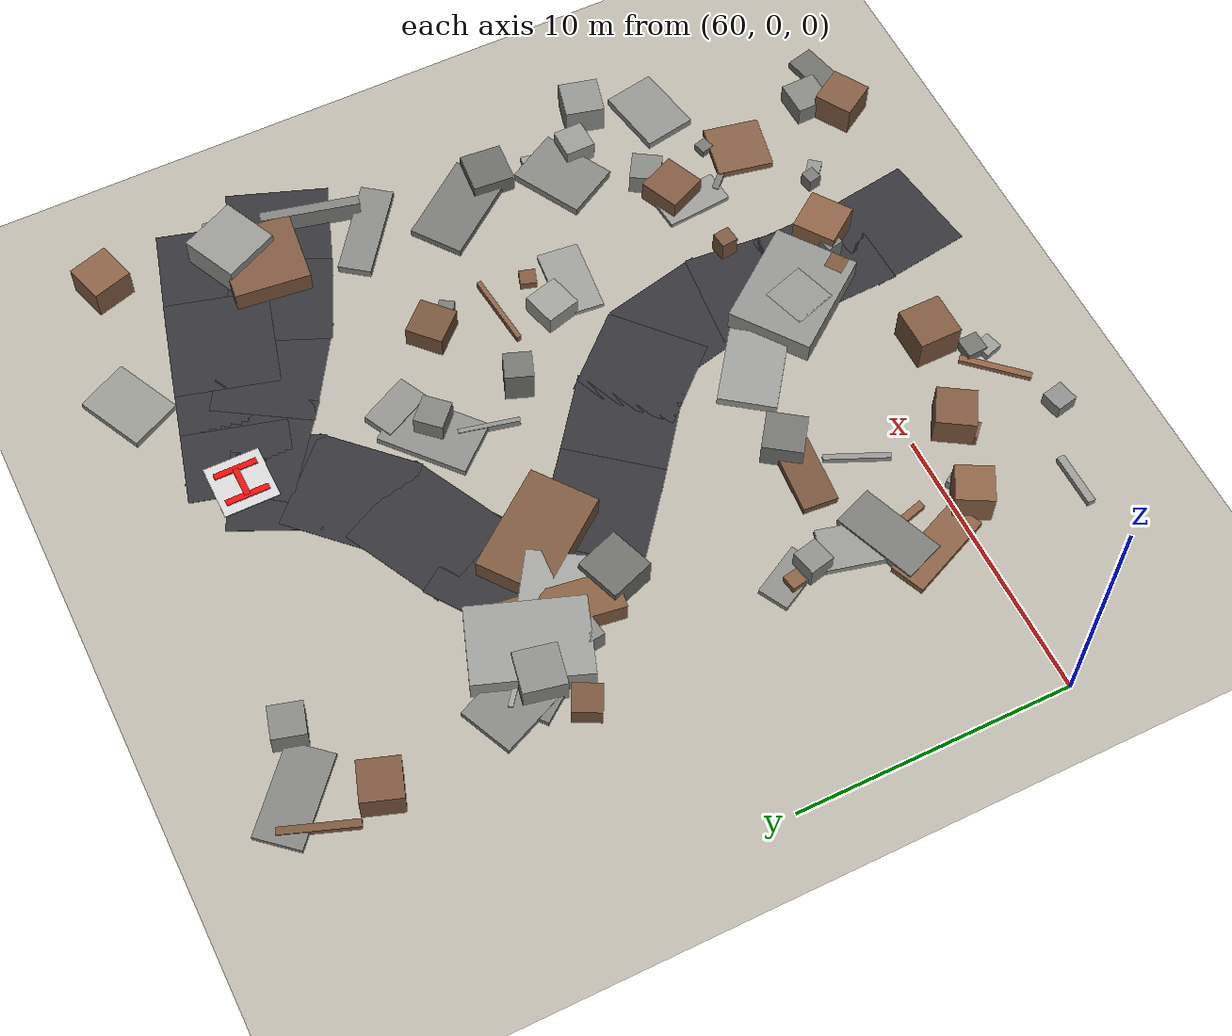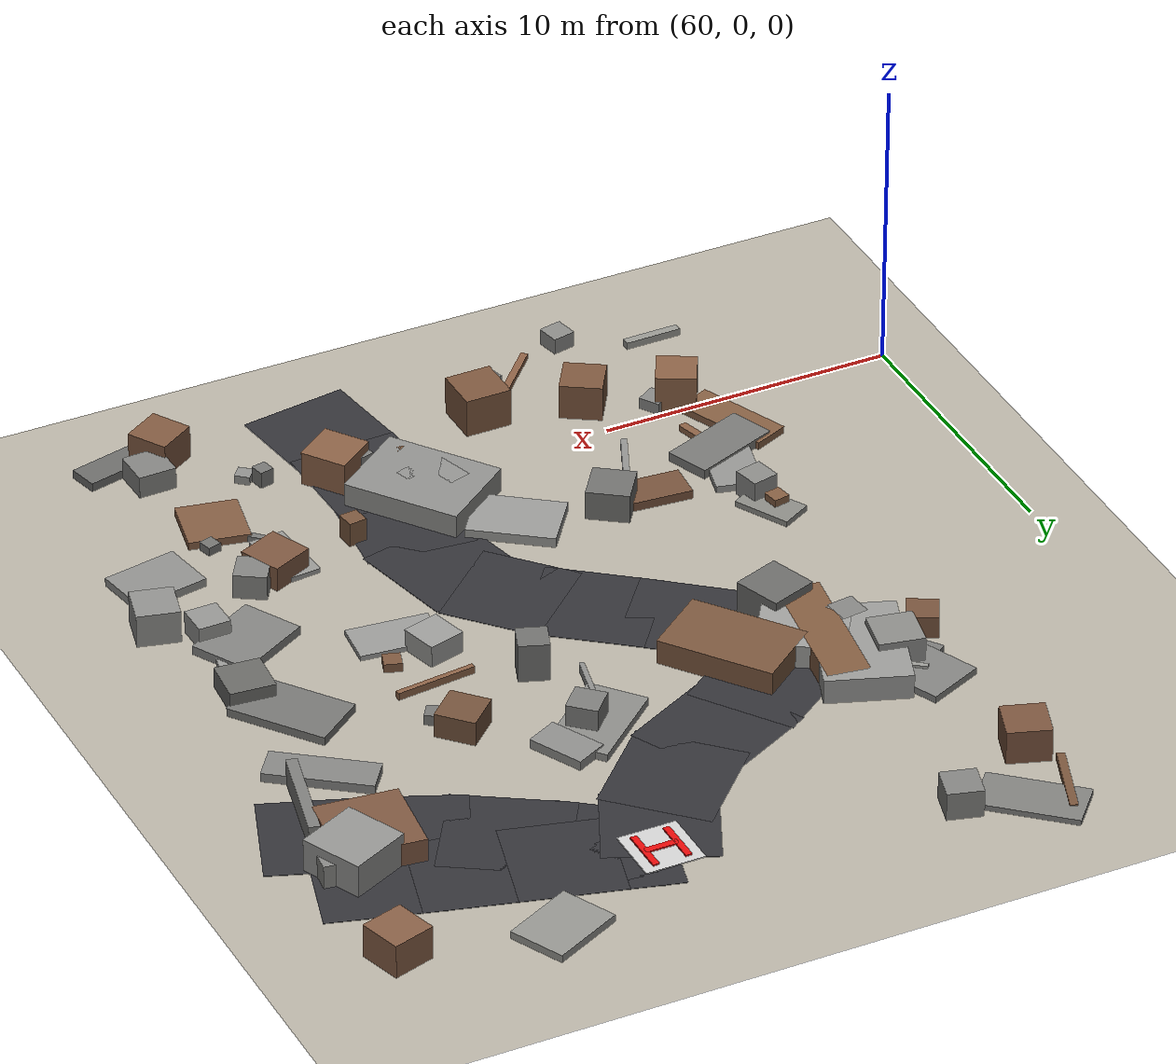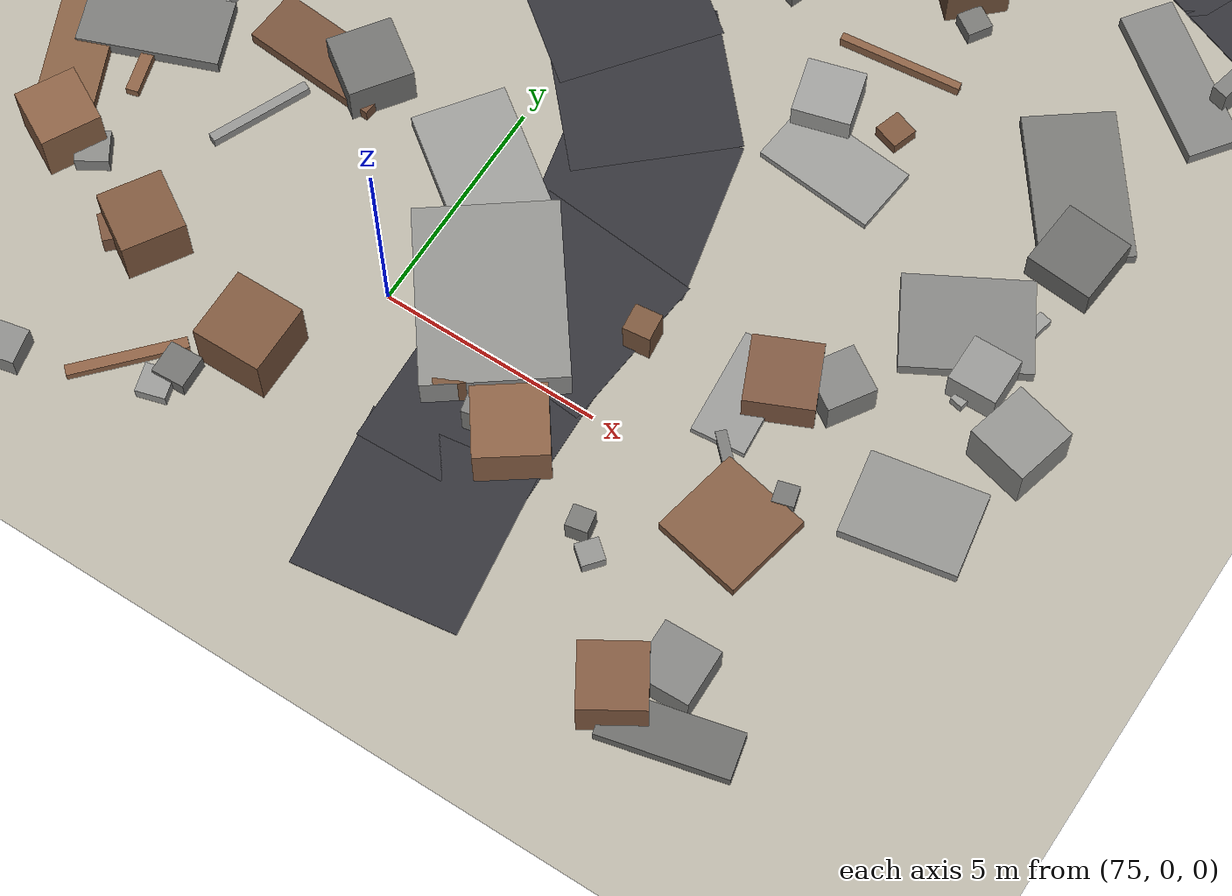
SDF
<sdf version="1.6">
 <world name="navitas_arena">
  <model name="ground_plane">
   <static>true</static>
   <link name="link">
    <collision name="collision">
     <geometry><plane><normal>0 0 1</normal><size>400 400</size></plane></geometry>
     <surface><friction><ode><mu>0.720</mu><mu2>0.720</mu2></ode></friction></surface>
    </collision>
    <visual name="visual">
     <cast_shadows>false</cast_shadows>
     <geometry><plane><normal>0 0 1</normal><size>400 400</size></plane></geometry>
     <material><ambient>0.720 0.700 0.650 1</ambient><diffuse>0.720 0.700 0.650 1</diffuse></material>
    </visual>
   </link>
  </model>
  <model name="road_zor_1_12">
   <static>true</static>
   <pose>78.257 -3.800 0.040 0 0 1.713</pose>
   <link name="link">
    <collision name="col"><geometry><box><size>3.729 3.680 0.020</size></box></geometry></collision>
    <visual name="vis">
     <geometry><box><size>3.729 3.680 0.020</size></box></geometry>
     <material><ambient>0.20 0.20 0.22 1</ambient><diffuse>0.20 0.20 0.22 1</diffuse></material>
    </visual>
   </link>
  </model>
  <model name="road_zor_1_13">
   <static>true</static>
   <pose>78.010 -1.000 0.040 0 0 1.604</pose>
   <link name="link">
    <collision name="col"><geometry><box><size>3.702 3.680 0.020</size></box></geometry></collision>
    <visual name="vis">
     <geometry><box><size>3.702 3.680 0.020</size></box></geometry>
     <material><ambient>0.20 0.20 0.22 1</ambient><diffuse>0.20 0.20 0.22 1</diffuse></material>
    </visual>
   </link>
  </model>
  <model name="road_zor_1_14">
   <static>true</static>
   <pose>78.092 1.800 0.040 0 0 1.479</pose>
   <link name="link">
    <collision name="col"><geometry><box><size>3.712 3.680 0.020</size></box></geometry></collision>
    <visual name="vis">
     <geometry><box><size>3.712 3.680 0.020</size></box></geometry>
     <material><ambient>0.20 0.20 0.22 1</ambient><diffuse>0.20 0.20 0.22 1</diffuse></material>
    </visual>
   </link>
  </model>
  <model name="road_zor_1_15">
   <static>true</static>
   <pose>77.906 4.600 0.040 0 0 1.792</pose>
   <link name="link">
    <collision name="col"><geometry><box><size>3.770 3.680 0.020</size></box></geometry></collision>
    <visual name="vis">
     <geometry><box><size>3.770 3.680 0.020</size></box></geometry>
     <material><ambient>0.20 0.20 0.22 1</ambient><diffuse>0.20 0.20 0.22 1</diffuse></material>
    </visual>
   </link>
  </model>
  <model name="road_zor_1_16">
   <static>true</static>
   <pose>76.774 6.904 0.040 0 0 2.306</pose>
   <link name="link">
    <collision name="col"><geometry><box><size>3.339 3.680 0.020</size></box></geometry></collision>
    <visual name="vis">
     <geometry><box><size>3.339 3.680 0.020</size></box></geometry>
     <material><ambient>0.20 0.20 0.22 1</ambient><diffuse>0.20 0.20 0.22 1</diffuse></material>
    </visual>
   </link>
  </model>
  <model name="road_zor_1_17">
   <static>true</static>
   <pose>74.762 8.732 0.040 0 0 2.483</pose>
   <link name="link">
    <collision name="col"><geometry><box><size>3.918 3.680 0.020</size></box></geometry></collision>
    <visual name="vis">
     <geometry><box><size>3.918 3.680 0.020</size></box></geometry>
     <material><ambient>0.20 0.20 0.22 1</ambient><diffuse>0.20 0.20 0.22 1</diffuse></material>
    </visual>
   </link>
  </model>
  <model name="road_zor_1_18">
   <static>true</static>
   <pose>72.478 10.541 0.040 0 0 2.461</pose>
   <link name="link">
    <collision name="col"><geometry><box><size>3.711 3.680 0.020</size></box></geometry></collision>
    <visual name="vis">
     <geometry><box><size>3.711 3.680 0.020</size></box></geometry>
     <material><ambient>0.20 0.20 0.22 1</ambient><diffuse>0.20 0.20 0.22 1</diffuse></material>
    </visual>
   </link>
  </model>
  <model name="road_zor_1_19">
   <static>true</static>
   <pose>71.020 12.666 0.040 0 0 1.858</pose>
   <link name="link">
    <collision name="col"><geometry><box><size>3.486 3.680 0.020</size></box></geometry></collision>
    <visual name="vis">
     <geometry><box><size>3.486 3.680 0.020</size></box></geometry>
     <material><ambient>0.20 0.20 0.22 1</ambient><diffuse>0.20 0.20 0.22 1</diffuse></material>
    </visual>
   </link>
  </model>
  <model name="road_zor_1_20">
   <static>true</static>
   <pose>71.752 14.688 0.040 0 0 0.618</pose>
   <link name="link">
    <collision name="col"><geometry><box><size>3.596 3.680 0.020</size></box></geometry></collision>
    <visual name="vis">
     <geometry><box><size>3.596 3.680 0.020</size></box></geometry>
     <material><ambient>0.20 0.20 0.22 1</ambient><diffuse>0.20 0.20 0.22 1</diffuse></material>
    </visual>
   </link>
  </model>
  <model name="road_zor_1_21">
   <static>true</static>
   <pose>74.207 16.153 0.040 0 0 0.467</pose>
   <link name="link">
    <collision name="col"><geometry><box><size>3.938 3.680 0.020</size></box></geometry></collision>
    <visual name="vis">
     <geometry><box><size>3.938 3.680 0.020</size></box></geometry>
     <material><ambient>0.20 0.20 0.22 1</ambient><diffuse>0.20 0.20 0.22 1</diffuse></material>
    </visual>
   </link>
  </model>
  <model name="road_zor_1_22">
   <static>true</static>
   <pose>76.566 17.854 0.040 0 0 0.792</pose>
   <link name="link">
    <collision name="col"><geometry><box><size>3.756 3.680 0.020</size></box></geometry></collision>
    <visual name="vis">
     <geometry><box><size>3.756 3.680 0.020</size></box></geometry>
     <material><ambient>0.20 0.20 0.22 1</ambient><diffuse>0.20 0.20 0.22 1</diffuse></material>
    </visual>
   </link>
  </model>
  <model name="road_zor_1_23">
   <static>true</static>
   <pose>78.063 19.935 0.040 0 0 1.137</pose>
   <link name="link">
    <collision name="col"><geometry><box><size>3.247 3.680 0.020</size></box></geometry></collision>
    <visual name="vis">
     <geometry><box><size>3.247 3.680 0.020</size></box></geometry>
     <material><ambient>0.20 0.20 0.22 1</ambient><diffuse>0.20 0.20 0.22 1</diffuse></material>
    </visual>
   </link>
  </model>
  <model name="road_zor_2_15">
   <static>true</static>
   <pose>87.415 15.986 0.040 0 0 2.789</pose>
   <link name="link">
    <collision name="col"><geometry><box><size>3.894 3.680 0.020</size></box></geometry></collision>
    <visual name="vis">
     <geometry><box><size>3.894 3.680 0.020</size></box></geometry>
     <material><ambient>0.20 0.20 0.22 1</ambient><diffuse>0.20 0.20 0.22 1</diffuse></material>
    </visual>
   </link>
  </model>
  <model name="road_zor_2_16">
   <static>true</static>
   <pose>84.858 17.002 0.040 0 0 2.734</pose>
   <link name="link">
    <collision name="col"><geometry><box><size>3.410 3.680 0.020</size></box></geometry></collision>
    <visual name="vis">
     <geometry><box><size>3.410 3.680 0.020</size></box></geometry>
     <material><ambient>0.20 0.20 0.22 1</ambient><diffuse>0.20 0.20 0.22 1</diffuse></material>
    </visual>
   </link>
  </model>
  <model name="road_zor_2_17">
   <static>true</static>
   <pose>82.404 18.320 0.040 0 0 2.580</pose>
   <link name="link">
    <collision name="col"><geometry><box><size>3.978 3.680 0.020</size></box></geometry></collision>
    <visual name="vis">
     <geometry><box><size>3.978 3.680 0.020</size></box></geometry>
     <material><ambient>0.20 0.20 0.22 1</ambient><diffuse>0.20 0.20 0.22 1</diffuse></material>
    </visual>
   </link>
  </model>
  <model name="road_zor_2_18">
   <static>true</static>
   <pose>79.829 20.070 0.040 0 0 2.510</pose>
   <link name="link">
    <collision name="col"><geometry><box><size>4.052 3.680 0.020</size></box></geometry></collision>
    <visual name="vis">
     <geometry><box><size>4.052 3.680 0.020</size></box></geometry>
     <material><ambient>0.20 0.20 0.22 1</ambient><diffuse>0.20 0.20 0.22 1</diffuse></material>
    </visual>
   </link>
  </model>
  <model name="road_zor_3_20">
   <static>true</static>
   <pose>86.890 18.730 0.040 0 0 2.862</pose>
   <link name="link">
    <collision name="col"><geometry><box><size>3.871 3.680 0.020</size></box></geometry></collision>
    <visual name="vis">
     <geometry><box><size>3.871 3.680 0.020</size></box></geometry>
     <material><ambient>0.20 0.20 0.22 1</ambient><diffuse>0.20 0.20 0.22 1</diffuse></material>
    </visual>
   </link>
  </model>
  <model name="road_zor_3_21">
   <static>true</static>
   <pose>84.064 19.520 0.040 0 0 2.876</pose>
   <link name="link">
    <collision name="col"><geometry><box><size>3.797 3.680 0.020</size></box></geometry></collision>
    <visual name="vis">
     <geometry><box><size>3.797 3.680 0.020</size></box></geometry>
     <material><ambient>0.20 0.20 0.22 1</ambient><diffuse>0.20 0.20 0.22 1</diffuse></material>
    </visual>
   </link>
  </model>
  <model name="road_zor_3_22">
   <static>true</static>
   <pose>81.461 20.220 0.040 0 0 2.882</pose>
   <link name="link">
    <collision name="col"><geometry><box><size>3.394 3.680 0.020</size></box></geometry></collision>
    <visual name="vis">
     <geometry><box><size>3.394 3.680 0.020</size></box></geometry>
     <material><ambient>0.20 0.20 0.22 1</ambient><diffuse>0.20 0.20 0.22 1</diffuse></material>
    </visual>
   </link>
  </model>
  <model name="road_zor_3_23">
   <static>true</static>
   <pose>79.406 20.770 0.040 0 0 2.877</pose>
   <link name="link">
    <collision name="col"><geometry><box><size>2.660 3.680 0.020</size></box></geometry></collision>
    <visual name="vis">
     <geometry><box><size>2.660 3.680 0.020</size></box></geometry>
     <material><ambient>0.20 0.20 0.22 1</ambient><diffuse>0.20 0.20 0.22 1</diffuse></material>
    </visual>
   </link>
  </model>
  <model name="blk_zor_1_1_0">
   <static>true</static>
   <pose>78.967 -1.388 0.595 0 0 2.194</pose>
   <link name="link">
    <collision name="col"><geometry><box><size>1.579 1.579 1.189</size></box></geometry></collision>
    <visual name="vis">
     <geometry><box><size>1.579 1.579 1.189</size></box></geometry>
     <material><ambient>0.54 0.38 0.27 1</ambient><diffuse>0.54 0.38 0.27 1</diffuse></material>
    </visual>
   </link>
  </model>
  <model name="blk_zor_1_1_1">
   <static>true</static>
   <pose>78.172 -1.259 0.425 0 0 1.804</pose>
   <link name="link">
    <collision name="col"><geometry><box><size>0.635 0.635 0.850</size></box></geometry></collision>
    <visual name="vis">
     <geometry><box><size>0.635 0.635 0.850</size></box></geometry>
     <material><ambient>0.49 0.49 0.48 1</ambient><diffuse>0.49 0.49 0.48 1</diffuse></material>
    </visual>
   </link>
  </model>
  <model name="blk_zor_1_1_2">
   <static>true</static>
   <pose>76.584 0.849 0.425 0 0 0.307</pose>
   <link name="link">
    <collision name="col"><geometry><box><size>1.628 1.628 0.850</size></box></geometry></collision>
    <visual name="vis">
     <geometry><box><size>1.628 1.628 0.850</size></box></geometry>
     <material><ambient>0.57 0.57 0.56 1</ambient><diffuse>0.57 0.57 0.56 1</diffuse></material>
    </visual>
   </link>
  </model>
  <model name="blk_zor_1_1_3">
   <static>true</static>
   <pose>79.907 1.988 0.425 0 0 0.113</pose>
   <link name="link">
    <collision name="col"><geometry><box><size>0.612 0.612 0.850</size></box></geometry></collision>
    <visual name="vis">
     <geometry><box><size>0.612 0.612 0.850</size></box></geometry>
     <material><ambient>0.48 0.34 0.24 1</ambient><diffuse>0.48 0.34 0.24 1</diffuse></material>
    </visual>
   </link>
  </model>
  <model name="blk_zor_1_1_4">
   <static>true</static>
   <pose>76.951 0.885 0.425 0 0 2.212</pose>
   <link name="link">
    <collision name="col"><geometry><box><size>4.012 3.063 0.850</size></box></geometry></collision>
    <visual name="vis">
     <geometry><box><size>4.012 3.063 0.850</size></box></geometry>
     <material><ambient>0.56 0.56 0.55 1</ambient><diffuse>0.56 0.56 0.55 1</diffuse></material>
    </visual>
   </link>
  </model>
  <model name="blk_zor_1_1_5">
   <static>true</static>
   <pose>77.220 -0.998 0.425 0 0 2.189</pose>
   <link name="link">
    <collision name="col"><geometry><box><size>0.665 0.665 0.850</size></box></geometry></collision>
    <visual name="vis">
     <geometry><box><size>0.665 0.665 0.850</size></box></geometry>
     <material><ambient>0.47 0.33 0.23 1</ambient><diffuse>0.47 0.33 0.23 1</diffuse></material>
    </visual>
   </link>
  </model>
  <model name="blk_zor_1_2_0">
   <static>true</static>
   <pose>69.819 11.407 0.571 0 0 1.912</pose>
   <link name="link">
    <collision name="col"><geometry><box><size>1.672 1.672 1.143</size></box></geometry></collision>
    <visual name="vis">
     <geometry><box><size>1.672 1.672 1.143</size></box></geometry>
     <material><ambient>0.42 0.42 0.41 1</ambient><diffuse>0.42 0.42 0.41 1</diffuse></material>
    </visual>
   </link>
  </model>
  <model name="blk_zor_1_2_1">
   <static>true</static>
   <pose>68.231 13.249 0.425 0 0 0.123</pose>
   <link name="link">
    <collision name="col"><geometry><box><size>0.911 0.911 0.850</size></box></geometry></collision>
    <visual name="vis">
     <geometry><box><size>0.911 0.911 0.850</size></box></geometry>
     <material><ambient>0.52 0.52 0.51 1</ambient><diffuse>0.52 0.52 0.51 1</diffuse></material>
    </visual>
   </link>
  </model>
  <model name="blk_zor_1_2_2">
   <static>true</static>
   <pose>72.143 13.064 0.425 0 0 2.221</pose>
   <link name="link">
    <collision name="col"><geometry><box><size>3.963 2.526 0.850</size></box></geometry></collision>
    <visual name="vis">
     <geometry><box><size>3.963 2.526 0.850</size></box></geometry>
     <material><ambient>0.48 0.34 0.24 1</ambient><diffuse>0.48 0.34 0.24 1</diffuse></material>
    </visual>
   </link>
  </model>
  <model name="blk_zor_1_2_3">
   <static>true</static>
   <pose>69.434 13.946 0.425 0 0 1.426</pose>
   <link name="link">
    <collision name="col"><geometry><box><size>4.871 1.417 0.850</size></box></geometry></collision>
    <visual name="vis">
     <geometry><box><size>4.871 1.417 0.850</size></box></geometry>
     <material><ambient>0.51 0.36 0.25 1</ambient><diffuse>0.51 0.36 0.25 1</diffuse></material>
    </visual>
   </link>
  </model>
  <model name="blk_zor_1_2_4">
   <static>true</static>
   <pose>68.702 15.017 0.425 0 0 1.225</pose>
   <link name="link">
    <collision name="col"><geometry><box><size>4.062 2.818 0.850</size></box></geometry></collision>
    <visual name="vis">
     <geometry><box><size>4.062 2.818 0.850</size></box></geometry>
     <material><ambient>0.60 0.60 0.59 1</ambient><diffuse>0.60 0.60 0.59 1</diffuse></material>
    </visual>
   </link>
  </model>
  <model name="blk_zor_1_2_5">
   <static>true</static>
   <pose>69.912 13.529 0.425 0 0 2.563</pose>
   <link name="link">
    <collision name="col"><geometry><box><size>2.841 2.267 0.850</size></box></geometry></collision>
    <visual name="vis">
     <geometry><box><size>2.841 2.267 0.850</size></box></geometry>
     <material><ambient>0.62 0.62 0.61 1</ambient><diffuse>0.62 0.62 0.61 1</diffuse></material>
    </visual>
   </link>
  </model>
  <model name="blk_zor_2_2_0">
   <static>true</static>
   <pose>87.245 17.816 0.592 0 0 2.009</pose>
   <link name="link">
    <collision name="col"><geometry><box><size>2.154 2.154 1.184</size></box></geometry></collision>
    <visual name="vis">
     <geometry><box><size>2.154 2.154 1.184</size></box></geometry>
     <material><ambient>0.58 0.58 0.57 1</ambient><diffuse>0.58 0.58 0.57 1</diffuse></material>
    </visual>
   </link>
  </model>
  <model name="blk_zor_2_2_1">
   <static>true</static>
   <pose>86.333 16.980 0.425 0 0 3.032</pose>
   <link name="link">
    <collision name="col"><geometry><box><size>2.758 2.736 0.850</size></box></geometry></collision>
    <visual name="vis">
     <geometry><box><size>2.758 2.736 0.850</size></box></geometry>
     <material><ambient>0.49 0.34 0.25 1</ambient><diffuse>0.49 0.34 0.25 1</diffuse></material>
    </visual>
   </link>
  </model>
  <model name="blk_zor_2_2_2">
   <static>true</static>
   <pose>88.077 18.053 0.425 0 0 1.459</pose>
   <link name="link">
    <collision name="col"><geometry><box><size>0.801 0.801 0.850</size></box></geometry></collision>
    <visual name="vis">
     <geometry><box><size>0.801 0.801 0.850</size></box></geometry>
     <material><ambient>0.53 0.53 0.52 1</ambient><diffuse>0.53 0.53 0.52 1</diffuse></material>
    </visual>
   </link>
  </model>
  <model name="blk_zor_2_2_3">
   <static>true</static>
   <pose>87.490 14.698 0.425 0 0 1.337</pose>
   <link name="link">
    <collision name="col"><geometry><box><size>3.565 0.366 0.850</size></box></geometry></collision>
    <visual name="vis">
     <geometry><box><size>3.565 0.366 0.850</size></box></geometry>
     <material><ambient>0.49 0.49 0.48 1</ambient><diffuse>0.49 0.49 0.48 1</diffuse></material>
    </visual>
   </link>
  </model>
  <model name="blk_zor_2_2_5">
   <static>true</static>
   <pose>87.001 18.083 0.425 0 0 0.249</pose>
   <link name="link">
    <collision name="col"><geometry><box><size>0.842 0.842 0.850</size></box></geometry></collision>
    <visual name="vis">
     <geometry><box><size>0.842 0.842 0.850</size></box></geometry>
     <material><ambient>0.52 0.36 0.26 1</ambient><diffuse>0.52 0.36 0.26 1</diffuse></material>
    </visual>
   </link>
  </model>
  <model name="deb_zor_0">
   <static>true</static>
   <pose>70.090 -1.588 0.612 0 0 2.579</pose>
   <link name="link">
    <collision name="col"><geometry><box><size>1.412 1.412 1.225</size></box></geometry></collision>
    <visual name="vis">
     <geometry><box><size>1.412 1.412 1.225</size></box></geometry>
     <material><ambient>0.49 0.34 0.24 1</ambient><diffuse>0.49 0.34 0.24 1</diffuse></material>
    </visual>
   </link>
  </model>
  <model name="deb_zor_1">
   <static>true</static>
   <pose>81.084 7.515 0.086 0 0 3.040</pose>
   <link name="link">
    <collision name="col"><geometry><box><size>2.737 1.511 0.172</size></box></geometry></collision>
    <visual name="vis">
     <geometry><box><size>2.737 1.511 0.172</size></box></geometry>
     <material><ambient>0.60 0.60 0.59 1</ambient><diffuse>0.60 0.60 0.59 1</diffuse></material>
    </visual>
   </link>
  </model>
  <model name="deb_zor_7">
   <static>true</static>
   <pose>66.193 1.331 0.130 0 0 1.977</pose>
   <link name="link">
    <collision name="col"><geometry><box><size>3.306 1.268 0.261</size></box></geometry></collision>
    <visual name="vis">
     <geometry><box><size>3.306 1.268 0.261</size></box></geometry>
     <material><ambient>0.52 0.37 0.26 1</ambient><diffuse>0.52 0.37 0.26 1</diffuse></material>
    </visual>
   </link>
  </model>
  <model name="deb_zor_10">
   <static>true</static>
   <pose>69.233 -5.249 0.279 0 0 0.207</pose>
   <link name="link">
    <collision name="col"><geometry><box><size>0.795 0.795 0.557</size></box></geometry></collision>
    <visual name="vis">
     <geometry><box><size>0.795 0.795 0.557</size></box></geometry>
     <material><ambient>0.54 0.54 0.53 1</ambient><diffuse>0.54 0.54 0.53 1</diffuse></material>
    </visual>
   </link>
  </model>
  <model name="deb_zor_19">
   <static>true</static>
   <pose>67.425 2.301 0.106 0 0 1.841</pose>
   <link name="link">
    <collision name="col"><geometry><box><size>2.777 0.279 0.212</size></box></geometry></collision>
    <visual name="vis">
     <geometry><box><size>2.777 0.279 0.212</size></box></geometry>
     <material><ambient>0.54 0.38 0.27 1</ambient><diffuse>0.54 0.38 0.27 1</diffuse></material>
    </visual>
   </link>
  </model>
  <model name="deb_zor_22">
   <static>true</static>
   <pose>70.772 3.896 0.156 0 0 3.061</pose>
   <link name="link">
    <collision name="col"><geometry><box><size>3.136 1.262 0.311</size></box></geometry></collision>
    <visual name="vis">
     <geometry><box><size>3.136 1.262 0.311</size></box></geometry>
     <material><ambient>0.46 0.32 0.23 1</ambient><diffuse>0.46 0.32 0.23 1</diffuse></material>
    </visual>
   </link>
  </model>
  <model name="deb_zor_24">
   <static>true</static>
   <pose>67.263 2.566 0.166 0 0 0.368</pose>
   <link name="link">
    <collision name="col"><geometry><box><size>3.110 1.545 0.331</size></box></geometry></collision>
    <visual name="vis">
     <geometry><box><size>3.110 1.545 0.331</size></box></geometry>
     <material><ambient>0.47 0.47 0.46 1</ambient><diffuse>0.47 0.47 0.46 1</diffuse></material>
    </visual>
   </link>
  </model>
  <model name="deb_zor_27">
   <static>true</static>
   <pose>67.227 16.283 0.121 0 0 1.984</pose>
   <link name="link">
    <collision name="col"><geometry><box><size>2.744 2.025 0.242</size></box></geometry></collision>
    <visual name="vis">
     <geometry><box><size>2.744 2.025 0.242</size></box></geometry>
     <material><ambient>0.51 0.51 0.50 1</ambient><diffuse>0.51 0.51 0.50 1</diffuse></material>
    </visual>
   </link>
  </model>
  <model name="deb_zor_29">
   <static>true</static>
   <pose>86.547 1.609 0.144 0 0 0.178</pose>
   <link name="link">
    <collision name="col"><geometry><box><size>2.540 1.890 0.289</size></box></geometry></collision>
    <visual name="vis">
     <geometry><box><size>2.540 1.890 0.289</size></box></geometry>
     <material><ambient>0.56 0.56 0.55 1</ambient><diffuse>0.56 0.56 0.55 1</diffuse></material>
    </visual>
   </link>
  </model>
  <model name="deb_zor_33">
   <static>true</static>
   <pose>84.394 -3.743 0.382 0 0 1.597</pose>
   <link name="link">
    <collision name="col"><geometry><box><size>1.285 1.285 0.764</size></box></geometry></collision>
    <visual name="vis">
     <geometry><box><size>1.285 1.285 0.764</size></box></geometry>
     <material><ambient>0.51 0.51 0.50 1</ambient><diffuse>0.51 0.51 0.50 1</diffuse></material>
    </visual>
   </link>
  </model>
  <model name="deb_zor_40">
   <static>true</static>
   <pose>81.230 12.785 0.423 0 0 2.325</pose>
   <link name="link">
    <collision name="col"><geometry><box><size>1.369 1.369 0.845</size></box></geometry></collision>
    <visual name="vis">
     <geometry><box><size>1.369 1.369 0.845</size></box></geometry>
     <material><ambient>0.45 0.32 0.23 1</ambient><diffuse>0.45 0.32 0.23 1</diffuse></material>
    </visual>
   </link>
  </model>
  <model name="deb_zor_41">
   <static>true</static>
   <pose>83.623 -0.532 0.137 0 0 1.371</pose>
   <link name="link">
    <collision name="col"><geometry><box><size>2.038 2.040 0.275</size></box></geometry></collision>
    <visual name="vis">
     <geometry><box><size>2.038 2.040 0.275</size></box></geometry>
     <material><ambient>0.51 0.36 0.26 1</ambient><diffuse>0.51 0.36 0.26 1</diffuse></material>
    </visual>
   </link>
  </model>
  <model name="deb_zor_43">
   <static>true</static>
   <pose>86.467 8.218 0.361 0 0 3.056</pose>
   <link name="link">
    <collision name="col"><geometry><box><size>1.517 1.517 0.723</size></box></geometry></collision>
    <visual name="vis">
     <geometry><box><size>1.517 1.517 0.723</size></box></geometry>
     <material><ambient>0.41 0.41 0.40 1</ambient><diffuse>0.41 0.41 0.40 1</diffuse></material>
    </visual>
   </link>
  </model>
  <model name="deb_zor_46">
   <static>true</static>
   <pose>81.619 -2.575 0.148 0 0 0.882</pose>
   <link name="link">
    <collision name="col"><geometry><box><size>0.512 0.512 0.296</size></box></geometry></collision>
    <visual name="vis">
     <geometry><box><size>0.512 0.512 0.296</size></box></geometry>
     <material><ambient>0.56 0.56 0.55 1</ambient><diffuse>0.56 0.56 0.55 1</diffuse></material>
    </visual>
   </link>
  </model>
  <model name="deb_zor_52">
   <static>true</static>
   <pose>84.978 -4.894 0.151 0 0 0.233</pose>
   <link name="link">
    <collision name="col"><geometry><box><size>2.813 1.012 0.302</size></box></geometry></collision>
    <visual name="vis">
     <geometry><box><size>2.813 1.012 0.302</size></box></geometry>
     <material><ambient>0.42 0.42 0.41 1</ambient><diffuse>0.42 0.42 0.41 1</diffuse></material>
    </visual>
   </link>
  </model>
  <model name="deb_zor_53">
   <static>true</static>
   <pose>77.451 14.432 0.133 0 0 0.713</pose>
   <link name="link">
    <collision name="col"><geometry><box><size>3.276 2.029 0.267</size></box></geometry></collision>
    <visual name="vis">
     <geometry><box><size>3.276 2.029 0.267</size></box></geometry>
     <material><ambient>0.54 0.54 0.53 1</ambient><diffuse>0.54 0.54 0.53 1</diffuse></material>
    </visual>
   </link>
  </model>
  <model name="deb_zor_57">
   <static>true</static>
   <pose>67.066 6.199 0.231 0 0 0.179</pose>
   <link name="link">
    <collision name="col"><geometry><box><size>0.556 0.556 0.463</size></box></geometry></collision>
    <visual name="vis">
     <geometry><box><size>0.556 0.556 0.463</size></box></geometry>
     <material><ambient>0.52 0.37 0.26 1</ambient><diffuse>0.52 0.37 0.26 1</diffuse></material>
    </visual>
   </link>
  </model>
  <model name="deb_zor_62">
   <static>true</static>
   <pose>67.353 23.755 0.096 0 0 2.418</pose>
   <link name="link">
    <collision name="col"><geometry><box><size>3.358 1.678 0.192</size></box></geometry></collision>
    <visual name="vis">
     <geometry><box><size>3.358 1.678 0.192</size></box></geometry>
     <material><ambient>0.50 0.50 0.49 1</ambient><diffuse>0.50 0.50 0.49 1</diffuse></material>
    </visual>
   </link>
  </model>
  <model name="deb_zor_63">
   <static>true</static>
   <pose>72.426 -3.723 0.203 0 0 1.621</pose>
   <link name="link">
    <collision name="col"><geometry><box><size>0.744 0.744 0.406</size></box></geometry></collision>
    <visual name="vis">
     <geometry><box><size>0.744 0.744 0.406</size></box></geometry>
     <material><ambient>0.44 0.44 0.43 1</ambient><diffuse>0.44 0.44 0.43 1</diffuse></material>
    </visual>
   </link>
  </model>
  <model name="deb_zor_64">
   <static>true</static>
   <pose>67.232 -0.585 0.651 0 0 2.646</pose>
   <link name="link">
    <collision name="col"><geometry><box><size>1.340 1.340 1.302</size></box></geometry></collision>
    <visual name="vis">
     <geometry><box><size>1.340 1.340 1.302</size></box></geometry>
     <material><ambient>0.54 0.38 0.27 1</ambient><diffuse>0.54 0.38 0.27 1</diffuse></material>
    </visual>
   </link>
  </model>
  <model name="deb_zor_69">
   <static>true</static>
   <pose>83.584 -4.758 0.586 0 0 2.122</pose>
   <link name="link">
    <collision name="col"><geometry><box><size>1.417 1.417 1.172</size></box></geometry></collision>
    <visual name="vis">
     <geometry><box><size>1.417 1.417 1.172</size></box></geometry>
     <material><ambient>0.50 0.35 0.25 1</ambient><diffuse>0.50 0.35 0.25 1</diffuse></material>
    </visual>
   </link>
  </model>
  <model name="deb_zor_75">
   <static>true</static>
   <pose>71.839 4.008 0.507 0 0 2.521</pose>
   <link name="link">
    <collision name="col"><geometry><box><size>1.438 1.438 1.014</size></box></geometry></collision>
    <visual name="vis">
     <geometry><box><size>1.438 1.438 1.014</size></box></geometry>
     <material><ambient>0.44 0.44 0.43 1</ambient><diffuse>0.44 0.44 0.43 1</diffuse></material>
    </visual>
   </link>
  </model>
  <model name="deb_zor_81">
   <static>true</static>
   <pose>86.280 5.485 0.109 0 0 1.369</pose>
   <link name="link">
    <collision name="col"><geometry><box><size>2.724 0.295 0.217</size></box></geometry></collision>
    <visual name="vis">
     <geometry><box><size>2.724 0.295 0.217</size></box></geometry>
     <material><ambient>0.60 0.60 0.59 1</ambient><diffuse>0.60 0.60 0.59 1</diffuse></material>
    </visual>
   </link>
  </model>
  <model name="deb_zor_84">
   <static>true</static>
   <pose>66.280 21.254 0.579 0 0 2.815</pose>
   <link name="link">
    <collision name="col"><geometry><box><size>1.446 1.446 1.158</size></box></geometry></collision>
    <visual name="vis">
     <geometry><box><size>1.446 1.446 1.158</size></box></geometry>
     <material><ambient>0.48 0.33 0.24 1</ambient><diffuse>0.48 0.33 0.24 1</diffuse></material>
    </visual>
   </link>
  </model>
  <model name="deb_zor_87">
   <static>true</static>
   <pose>85.623 9.749 0.146 0 0 2.215</pose>
   <link name="link">
    <collision name="col"><geometry><box><size>3.417 1.993 0.292</size></box></geometry></collision>
    <visual name="vis">
     <geometry><box><size>3.417 1.993 0.292</size></box></geometry>
     <material><ambient>0.46 0.46 0.45 1</ambient><diffuse>0.46 0.46 0.45 1</diffuse></material>
    </visual>
   </link>
  </model>
  <model name="deb_zor_95">
   <static>true</static>
   <pose>69.458 23.059 0.482 0 0 2.870</pose>
   <link name="link">
    <collision name="col"><geometry><box><size>1.182 1.182 0.964</size></box></geometry></collision>
    <visual name="vis">
     <geometry><box><size>1.182 1.182 0.964</size></box></geometry>
     <material><ambient>0.51 0.51 0.50 1</ambient><diffuse>0.51 0.51 0.50 1</diffuse></material>
    </visual>
   </link>
  </model>
  <model name="deb_zor_97">
   <static>true</static>
   <pose>81.770 8.839 0.154 0 0 1.259</pose>
   <link name="link">
    <collision name="col"><geometry><box><size>0.587 0.587 0.308</size></box></geometry></collision>
    <visual name="vis">
     <geometry><box><size>0.587 0.587 0.308</size></box></geometry>
     <material><ambient>0.49 0.34 0.24 1</ambient><diffuse>0.49 0.34 0.24 1</diffuse></material>
    </visual>
   </link>
  </model>
  <model name="deb_zor_98">
   <static>true</static>
   <pose>81.823 11.977 0.180 0 0 0.991</pose>
   <link name="link">
    <collision name="col"><geometry><box><size>0.562 0.562 0.360</size></box></geometry></collision>
    <visual name="vis">
     <geometry><box><size>0.562 0.562 0.360</size></box></geometry>
     <material><ambient>0.46 0.46 0.45 1</ambient><diffuse>0.46 0.46 0.45 1</diffuse></material>
    </visual>
   </link>
  </model>
  <model name="deb_zor_101">
   <static>true</static>
   <pose>67.365 5.378 0.436 0 0 0.215</pose>
   <link name="link">
    <collision name="col"><geometry><box><size>0.923 0.923 0.872</size></box></geometry></collision>
    <visual name="vis">
     <geometry><box><size>0.923 0.923 0.872</size></box></geometry>
     <material><ambient>0.54 0.54 0.53 1</ambient><diffuse>0.54 0.54 0.53 1</diffuse></material>
    </visual>
   </link>
  </model>
  <model name="deb_zor_105">
   <static>true</static>
   <pose>86.152 13.134 0.157 0 0 2.500</pose>
   <link name="link">
    <collision name="col"><geometry><box><size>3.554 1.194 0.314</size></box></geometry></collision>
    <visual name="vis">
     <geometry><box><size>3.554 1.194 0.314</size></box></geometry>
     <material><ambient>0.52 0.52 0.51 1</ambient><diffuse>0.52 0.52 0.51 1</diffuse></material>
    </visual>
   </link>
  </model>
  <model name="deb_zor_106">
   <static>true</static>
   <pose>85.318 5.766 0.158 0 0 0.506</pose>
   <link name="link">
    <collision name="col"><geometry><box><size>2.763 2.112 0.316</size></box></geometry></collision>
    <visual name="vis">
     <geometry><box><size>2.763 2.112 0.316</size></box></geometry>
     <material><ambient>0.51 0.51 0.50 1</ambient><diffuse>0.51 0.51 0.50 1</diffuse></material>
    </visual>
   </link>
  </model>
  <model name="deb_zor_108">
   <static>true</static>
   <pose>87.574 3.894 0.568 0 0 2.895</pose>
   <link name="link">
    <collision name="col"><geometry><box><size>1.415 1.415 1.137</size></box></geometry></collision>
    <visual name="vis">
     <geometry><box><size>1.415 1.415 1.137</size></box></geometry>
     <material><ambient>0.56 0.56 0.55 1</ambient><diffuse>0.56 0.56 0.55 1</diffuse></material>
    </visual>
   </link>
  </model>
  <model name="deb_zor_112">
   <static>true</static>
   <pose>82.320 2.056 0.086 0 0 1.658</pose>
   <link name="link">
    <collision name="col"><geometry><box><size>2.423 1.207 0.172</size></box></geometry></collision>
    <visual name="vis">
     <geometry><box><size>2.423 1.207 0.172</size></box></geometry>
     <material><ambient>0.59 0.59 0.58 1</ambient><diffuse>0.59 0.59 0.58 1</diffuse></material>
    </visual>
   </link>
  </model>
  <model name="deb_zor_113">
   <static>true</static>
   <pose>66.098 14.219 0.388 0 0 2.660</pose>
   <link name="link">
    <collision name="col"><geometry><box><size>1.034 1.034 0.777</size></box></geometry></collision>
    <visual name="vis">
     <geometry><box><size>1.034 1.034 0.777</size></box></geometry>
     <material><ambient>0.46 0.32 0.23 1</ambient><diffuse>0.46 0.32 0.23 1</diffuse></material>
    </visual>
   </link>
  </model>
  <model name="deb_zor_122">
   <static>true</static>
   <pose>83.046 0.386 0.107 0 0 2.359</pose>
   <link name="link">
    <collision name="col"><geometry><box><size>1.930 0.238 0.213</size></box></geometry></collision>
    <visual name="vis">
     <geometry><box><size>1.930 0.238 0.213</size></box></geometry>
     <material><ambient>0.47 0.47 0.46 1</ambient><diffuse>0.47 0.47 0.46 1</diffuse></material>
    </visual>
   </link>
  </model>
  <model name="deb_zor_124">
   <static>true</static>
   <pose>78.878 15.187 0.164 0 0 2.035</pose>
   <link name="link">
    <collision name="col"><geometry><box><size>1.949 1.154 0.328</size></box></geometry></collision>
    <visual name="vis">
     <geometry><box><size>1.949 1.154 0.328</size></box></geometry>
     <material><ambient>0.55 0.55 0.54 1</ambient><diffuse>0.55 0.55 0.54 1</diffuse></material>
    </visual>
   </link>
  </model>
  <model name="deb_zor_126">
   <static>true</static>
   <pose>69.506 -1.879 0.238 0 0 0.812</pose>
   <link name="link">
    <collision name="col"><geometry><box><size>0.640 0.640 0.477</size></box></geometry></collision>
    <visual name="vis">
     <geometry><box><size>0.640 0.640 0.477</size></box></geometry>
     <material><ambient>0.48 0.33 0.24 1</ambient><diffuse>0.48 0.33 0.24 1</diffuse></material>
    </visual>
   </link>
  </model>
  <model name="deb_zor_128">
   <static>true</static>
   <pose>80.242 8.623 0.378 0 0 1.838</pose>
   <link name="link">
    <collision name="col"><geometry><box><size>1.281 1.281 0.757</size></box></geometry></collision>
    <visual name="vis">
     <geometry><box><size>1.281 1.281 0.757</size></box></geometry>
     <material><ambient>0.61 0.61 0.60 1</ambient><diffuse>0.61 0.61 0.60 1</diffuse></material>
    </visual>
   </link>
  </model>
  <model name="deb_zor_137">
   <static>true</static>
   <pose>67.560 15.179 0.540 0 0 1.369</pose>
   <link name="link">
    <collision name="col"><geometry><box><size>1.516 1.516 1.080</size></box></geometry></collision>
    <visual name="vis">
     <geometry><box><size>1.516 1.516 1.080</size></box></geometry>
     <material><ambient>0.54 0.54 0.53 1</ambient><diffuse>0.54 0.54 0.53 1</diffuse></material>
    </visual>
   </link>
  </model>
  <model name="deb_zor_145">
   <static>true</static>
   <pose>66.347 -4.146 0.124 0 0 0.012</pose>
   <link name="link">
    <collision name="col"><geometry><box><size>1.936 0.279 0.247</size></box></geometry></collision>
    <visual name="vis">
     <geometry><box><size>1.936 0.279 0.247</size></box></geometry>
     <material><ambient>0.59 0.59 0.57 1</ambient><diffuse>0.59 0.59 0.57 1</diffuse></material>
    </visual>
   </link>
  </model>
  <model name="deb_zor_146">
   <static>true</static>
   <pose>70.343 2.005 0.115 0 0 1.155</pose>
   <link name="link">
    <collision name="col"><geometry><box><size>2.312 0.212 0.230</size></box></geometry></collision>
    <visual name="vis">
     <geometry><box><size>2.312 0.212 0.230</size></box></geometry>
     <material><ambient>0.57 0.57 0.56 1</ambient><diffuse>0.57 0.57 0.56 1</diffuse></material>
    </visual>
   </link>
  </model>
  <model name="deb_zor_148">
   <static>true</static>
   <pose>66.033 23.484 0.124 0 0 1.224</pose>
   <link name="link">
    <collision name="col"><geometry><box><size>2.686 0.267 0.247</size></box></geometry></collision>
    <visual name="vis">
     <geometry><box><size>2.686 0.267 0.247</size></box></geometry>
     <material><ambient>0.47 0.33 0.23 1</ambient><diffuse>0.47 0.33 0.23 1</diffuse></material>
    </visual>
   </link>
  </model>
  <model name="deb_zor_149">
   <static>true</static>
   <pose>72.234 -4.225 0.147 0 0 1.848</pose>
   <link name="link">
    <collision name="col"><geometry><box><size>0.659 0.659 0.294</size></box></geometry></collision>
    <visual name="vis">
     <geometry><box><size>0.659 0.659 0.294</size></box></geometry>
     <material><ambient>0.59 0.59 0.58 1</ambient><diffuse>0.59 0.59 0.58 1</diffuse></material>
    </visual>
   </link>
  </model>
  <model name="deb_zor_150">
   <static>true</static>
   <pose>77.755 14.286 0.505 0 0 2.385</pose>
   <link name="link">
    <collision name="col"><geometry><box><size>1.054 1.054 1.010</size></box></geometry></collision>
    <visual name="vis">
     <geometry><box><size>1.054 1.054 1.010</size></box></geometry>
     <material><ambient>0.49 0.49 0.48 1</ambient><diffuse>0.49 0.49 0.48 1</diffuse></material>
    </visual>
   </link>
  </model>
  <model name="deb_zor_152">
   <static>true</static>
   <pose>67.300 6.253 0.102 0 0 2.063</pose>
   <link name="link">
    <collision name="col"><geometry><box><size>1.996 1.123 0.204</size></box></geometry></collision>
    <visual name="vis">
     <geometry><box><size>1.996 1.123 0.204</size></box></geometry>
     <material><ambient>0.54 0.54 0.52 1</ambient><diffuse>0.54 0.54 0.52 1</diffuse></material>
    </visual>
   </link>
  </model>
  <model name="deb_zor_153">
   <static>true</static>
   <pose>67.373 3.535 0.121 0 0 1.329</pose>
   <link name="link">
    <collision name="col"><geometry><box><size>2.792 1.560 0.242</size></box></geometry></collision>
    <visual name="vis">
     <geometry><box><size>2.792 1.560 0.242</size></box></geometry>
     <material><ambient>0.58 0.58 0.57 1</ambient><diffuse>0.58 0.58 0.57 1</diffuse></material>
    </visual>
   </link>
  </model>
  <model name="deb_zor_154">
   <static>true</static>
   <pose>74.932 3.518 0.170 0 0 2.506</pose>
   <link name="link">
    <collision name="col"><geometry><box><size>2.930 2.075 0.339</size></box></geometry></collision>
    <visual name="vis">
     <geometry><box><size>2.930 2.075 0.339</size></box></geometry>
     <material><ambient>0.60 0.60 0.59 1</ambient><diffuse>0.60 0.60 0.59 1</diffuse></material>
    </visual>
   </link>
  </model>
  <model name="deb_zor_170">
   <static>true</static>
   <pose>82.978 23.326 0.132 0 0 0.453</pose>
   <link name="link">
    <collision name="col"><geometry><box><size>2.565 1.949 0.263</size></box></geometry></collision>
    <visual name="vis">
     <geometry><box><size>2.565 1.949 0.263</size></box></geometry>
     <material><ambient>0.58 0.58 0.56 1</ambient><diffuse>0.58 0.58 0.56 1</diffuse></material>
    </visual>
   </link>
  </model>
  <model name="deb_zor_178">
   <static>true</static>
   <pose>73.401 -2.474 0.668 0 0 0.007</pose>
   <link name="link">
    <collision name="col"><geometry><box><size>1.572 1.572 1.335</size></box></geometry></collision>
    <visual name="vis">
     <geometry><box><size>1.572 1.572 1.335</size></box></geometry>
     <material><ambient>0.49 0.34 0.24 1</ambient><diffuse>0.49 0.34 0.24 1</diffuse></material>
    </visual>
   </link>
  </model>
  <model name="deb_zor_185">
   <static>true</static>
   <pose>82.878 2.584 0.427 0 0 1.989</pose>
   <link name="link">
    <collision name="col"><geometry><box><size>1.494 1.494 0.853</size></box></geometry></collision>
    <visual name="vis">
     <geometry><box><size>1.494 1.494 0.853</size></box></geometry>
     <material><ambient>0.49 0.34 0.25 1</ambient><diffuse>0.49 0.34 0.25 1</diffuse></material>
    </visual>
   </link>
  </model>
  <model name="deb_zor_187">
   <static>true</static>
   <pose>76.841 12.641 0.151 0 0 1.349</pose>
   <link name="link">
    <collision name="col"><geometry><box><size>2.154 0.168 0.301</size></box></geometry></collision>
    <visual name="vis">
     <geometry><box><size>2.154 0.168 0.301</size></box></geometry>
     <material><ambient>0.55 0.55 0.54 1</ambient><diffuse>0.55 0.55 0.54 1</diffuse></material>
    </visual>
   </link>
  </model>
  <model name="deb_zor_188">
   <static>true</static>
   <pose>84.208 0.570 0.151 0 0 1.840</pose>
   <link name="link">
    <collision name="col"><geometry><box><size>0.474 0.474 0.302</size></box></geometry></collision>
    <visual name="vis">
     <geometry><box><size>0.474 0.474 0.302</size></box></geometry>
     <material><ambient>0.45 0.45 0.44 1</ambient><diffuse>0.45 0.45 0.44 1</diffuse></material>
    </visual>
   </link>
  </model>
  <model name="deb_zor_189">
   <static>true</static>
   <pose>67.987 -0.619 0.198 0 0 2.124</pose>
   <link name="link">
    <collision name="col"><geometry><box><size>0.726 0.726 0.397</size></box></geometry></collision>
    <visual name="vis">
     <geometry><box><size>0.726 0.726 0.397</size></box></geometry>
     <material><ambient>0.53 0.53 0.52 1</ambient><diffuse>0.53 0.53 0.52 1</diffuse></material>
    </visual>
   </link>
  </model>
  <model name="deb_zor_190">
   <static>true</static>
   <pose>86.214 4.855 0.393 0 0 1.584</pose>
   <link name="link">
    <collision name="col"><geometry><box><size>1.092 1.092 0.785</size></box></geometry></collision>
    <visual name="vis">
     <geometry><box><size>1.092 1.092 0.785</size></box></geometry>
     <material><ambient>0.58 0.58 0.57 1</ambient><diffuse>0.58 0.58 0.57 1</diffuse></material>
    </visual>
   </link>
  </model>
  <model name="deb_zor_192">
   <static>true</static>
   <pose>71.387 -4.066 0.097 0 0 0.830</pose>
   <link name="link">
    <collision name="col"><geometry><box><size>2.543 0.242 0.194</size></box></geometry></collision>
    <visual name="vis">
     <geometry><box><size>2.543 0.242 0.194</size></box></geometry>
     <material><ambient>0.55 0.38 0.27 1</ambient><diffuse>0.55 0.38 0.27 1</diffuse></material>
    </visual>
   </link>
  </model>
  <model name="deb_zor_193">
   <static>true</static>
   <pose>81.142 -2.176 0.289 0 0 1.772</pose>
   <link name="link">
    <collision name="col"><geometry><box><size>0.491 0.491 0.578</size></box></geometry></collision>
    <visual name="vis">
     <geometry><box><size>0.491 0.491 0.578</size></box></geometry>
     <material><ambient>0.46 0.46 0.45 1</ambient><diffuse>0.46 0.46 0.45 1</diffuse></material>
    </visual>
   </link>
  </model>
  <model name="deb_zor_195">
   <static>true</static>
   <pose>77.992 10.985 0.669 0 0 1.215</pose>
   <link name="link">
    <collision name="col"><geometry><box><size>1.006 1.006 1.338</size></box></geometry></collision>
    <visual name="vis">
     <geometry><box><size>1.006 1.006 1.338</size></box></geometry>
     <material><ambient>0.44 0.44 0.43 1</ambient><diffuse>0.44 0.44 0.43 1</diffuse></material>
    </visual>
   </link>
  </model>
  <model name="deb_zor_201">
   <static>true</static>
   <pose>67.552 15.797 0.110 0 0 0.642</pose>
   <link name="link">
    <collision name="col"><geometry><box><size>2.629 1.464 0.220</size></box></geometry></collision>
    <visual name="vis">
     <geometry><box><size>2.629 1.464 0.220</size></box></geometry>
     <material><ambient>0.48 0.48 0.47 1</ambient><diffuse>0.48 0.48 0.47 1</diffuse></material>
    </visual>
   </link>
  </model>
  <model name="deb_zor_204">
   <static>true</static>
   <pose>83.900 3.100 0.425 0 0 1.004</pose>
   <link name="link">
    <collision name="col"><geometry><box><size>1.098 1.098 0.850</size></box></geometry></collision>
    <visual name="vis">
     <geometry><box><size>1.098 1.098 0.850</size></box></geometry>
     <material><ambient>0.51 0.51 0.50 1</ambient><diffuse>0.51 0.51 0.50 1</diffuse></material>
    </visual>
   </link>
  </model>
  <model name="deb_zor_208">
   <static>true</static>
   <pose>80.993 10.328 0.130 0 0 0.107</pose>
   <link name="link">
    <collision name="col"><geometry><box><size>2.741 0.173 0.260</size></box></geometry></collision>
    <visual name="vis">
     <geometry><box><size>2.741 0.173 0.260</size></box></geometry>
     <material><ambient>0.54 0.38 0.27 1</ambient><diffuse>0.54 0.38 0.27 1</diffuse></material>
    </visual>
   </link>
  </model>
  <model name="deb_zor_211">
   <static>true</static>
   <pose>68.061 15.678 0.166 0 0 2.472</pose>
   <link name="link">
    <collision name="col"><geometry><box><size>2.511 0.173 0.333</size></box></geometry></collision>
    <visual name="vis">
     <geometry><box><size>2.511 0.173 0.333</size></box></geometry>
     <material><ambient>0.61 0.61 0.59 1</ambient><diffuse>0.61 0.61 0.59 1</diffuse></material>
    </visual>
   </link>
  </model>
  <model name="chic_zor_5">
   <static>true</static>
   <pose>87.931 22.380 0.582 0 0 0.292</pose>
   <link name="link">
    <collision name="col"><geometry><box><size>1.471 1.471 1.164</size></box></geometry></collision>
    <visual name="vis">
     <geometry><box><size>1.471 1.471 1.164</size></box></geometry>
     <material><ambient>0.53 0.37 0.27 1</ambient><diffuse>0.53 0.37 0.27 1</diffuse></material>
    </visual>
   </link>
  </model>
  <model name="hbpad_zor">
   <static>true</static>
   <pose>78.557 21.000 0.070 0 0 0.000</pose>
   <link name="link">
    <collision name="col"><geometry><box><size>2.000 2.000 0.040</size></box></geometry></collision>
    <visual name="vis">
     <geometry><box><size>2.000 2.000 0.040</size></box></geometry>
     <material><ambient>0.82 0.82 0.82 1</ambient><diffuse>0.82 0.82 0.82 1</diffuse></material>
    </visual>
   </link>
  </model>
  <model name="H_zor_l">
   <static>true</static>
   <pose>78.007 21.000 0.100 0 0 0.000</pose>
   <link name="link">
    <collision name="col"><geometry><box><size>0.220 1.550 0.100</size></box></geometry></collision>
    <visual name="vis">
     <geometry><box><size>0.220 1.550 0.100</size></box></geometry>
     <material><ambient>0.90 0.05 0.05 1</ambient><diffuse>0.90 0.05 0.05 1</diffuse></material>
    </visual>
   </link>
  </model>
  <model name="H_zor_r">
   <static>true</static>
   <pose>79.107 21.000 0.100 0 0 0.000</pose>
   <link name="link">
    <collision name="col"><geometry><box><size>0.220 1.550 0.100</size></box></geometry></collision>
    <visual name="vis">
     <geometry><box><size>0.220 1.550 0.100</size></box></geometry>
     <material><ambient>0.90 0.05 0.05 1</ambient><diffuse>0.90 0.05 0.05 1</diffuse></material>
    </visual>
   </link>
  </model>
  <model name="H_zor_b">
   <static>true</static>
   <pose>78.557 21.000 0.100 0 0 0.000</pose>
   <link name="link">
    <collision name="col"><geometry><box><size>1.100 0.220 0.100</size></box></geometry></collision>
    <visual name="vis">
     <geometry><box><size>1.100 0.220 0.100</size></box></geometry>
     <material><ambient>0.90 0.05 0.05 1</ambient><diffuse>0.90 0.05 0.05 1</diffuse></material>
    </visual>
   </link>
  </model>
 </world>
</sdf>
